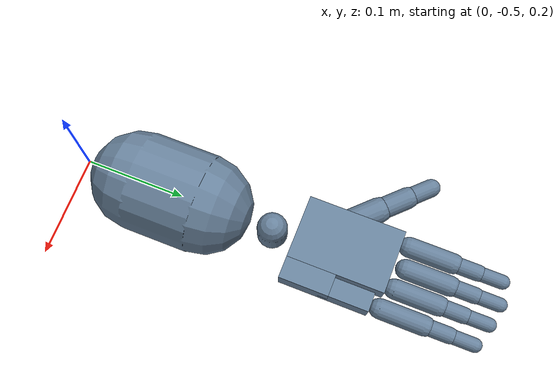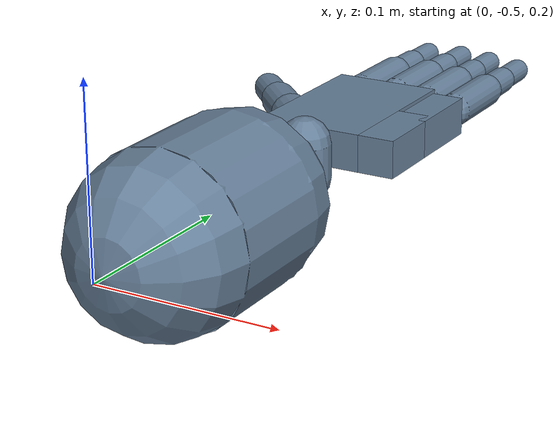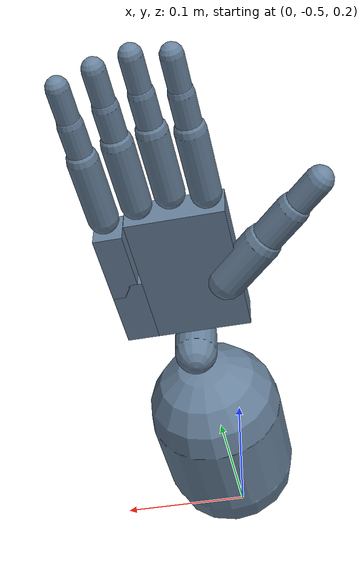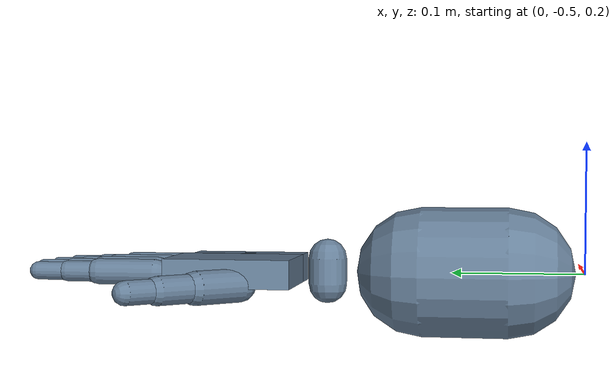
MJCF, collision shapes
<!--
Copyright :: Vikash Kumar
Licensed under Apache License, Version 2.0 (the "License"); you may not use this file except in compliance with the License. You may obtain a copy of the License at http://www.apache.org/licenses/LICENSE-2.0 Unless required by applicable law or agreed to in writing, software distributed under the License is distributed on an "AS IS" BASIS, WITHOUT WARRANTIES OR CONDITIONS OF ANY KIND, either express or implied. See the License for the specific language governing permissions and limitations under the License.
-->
<!-- ======================================================
    Extracted and Modified by Sudeep Dasari
====================================================== -->

<mujoco model='adroit'>
    <include file='../../common.xml'/>

    <asset>
        <material name="MatColl" specular="1" shininess="0.3" reflectance="0.5" rgba="0.4 0.5 0.6 1" />
        <material name="MatViz" specular="0.75" shininess="0.1" reflectance="0.5" rgba="0.9 0.7 0.5 1" />

        <mesh name="forearm_simple" file="../../meshes/adroit/forearm_simple.stl" />
        <mesh name="wrist" file="../../meshes/adroit/wrist.stl" scale="0.001 0.001 0.001"/>
        <mesh name="palm" file="../../meshes/adroit/palm.stl" scale="0.001 0.001 0.001"/>
        <mesh name="lfmetacarpal" file="../../meshes/adroit/lfmetacarpal.stl" scale="0.001 0.001 0.001"/>
        <mesh name="knuckle" file="../../meshes/adroit/knuckle.stl" scale="0.001 0.001 0.001"/>
        <mesh name="F3" file="../../meshes/adroit/F3.stl" scale="0.001 0.001 0.001"/>
        <mesh name="F2" file="../../meshes/adroit/F2.stl" scale="0.001 0.001 0.001"/>
        <mesh name="F1" file="../../meshes/adroit/F1.stl" scale="0.001 0.001 0.001"/>
        <mesh name="TH3_z" file="../../meshes/adroit/TH3_z.stl" scale="0.001 0.001 0.001"/>
        <mesh name="TH2_z" file="../../meshes/adroit/TH2_z.stl" scale="0.001 0.001 0.001"/>
        <mesh name="TH1_z" file="../../meshes/adroit/TH1_z.stl" scale="0.001 0.001 0.001"/>
    </asset>

    <worldbody>
        <!-- ======= HAND ======= -->
        <body name="forearm" pos="0 -0.7 0.2" euler="-1.57 0 3.14">
            <inertial pos="0.001 -0.002 0.29" quat="0.982037 -0.0160006 0 -0.188007" mass="4" diaginertia="0.01 0.01 0.0075" />
            <joint name="ARTx" pos="0 0 0" axis="1 0 0" type="slide" range="-0.25 0.25" damping="20" />
	    <joint name="ARTy" pos="0 0 0" axis="0 1 0" type="slide" range="-0.2 0.2" damping="20" />
            <joint name="ARTz" pos="0 0 0" axis="0 0 1" type="slide" range="-0.3 0.5" damping="20" />
            <joint name="ARRx" pos="0 0 0" axis="1 0 0" range="-1.75 1.75" damping="20" />
            <joint name="ARRy" pos="0 0 0" axis="0 1 0" range="-1.75 1.75" damping="20" />
            <joint name="ARRz" pos="0 0 0" axis="0 0 1" range="-2.5 2.5" damping="20" />
            <geom name="V_forearm" class="D_Vizual" pos="0 -.01 .181" euler="0 0 -1.57"  mesh="forearm_simple" />
            <geom name="C_forearm1" class="DC_Hand" size="0.05 0.033" pos="0 0 0.29" type="capsule" rgba="0.4 0.5 0.6 0.1" />
            <!-- ======= Adroit ======= -->
            <body name="wrist" pos="0 0 0.396">
                <inertial pos="0.003 0 0.016" quat="0.504234 0.49623 0.49523 0.504234" mass="0.3" diaginertia="0.001 0.001 0.001" />
                <camera name="wrist_cam" pos="0.0 -0.03 0.05" quat="0.0 0.0 -0.9659258262890683 -0.25881904510252074" fovy="70"/>
                <site name="Tch_wrist" class="D_Touch" pos="0 0 0" />

                <joint name="WRJ1" pos="0 0 0" axis="0 1 0" range="-0.524 0.175" armature="0.005" damping="0.5" />
                <geom name="V_wrist" class="D_Vizual" mesh="wrist" />
                <geom name="C_wrist" class="DC_Hand" size="0.015 0.01" quat="0.707107 0.707107 0 0" type="capsule" rgba="0.4 0.5 0.6 0.1" />
                <body name="palm" pos="0 0 0.034">
                    <inertial pos="0.006 0 0.036" quat="0.715833 0.0439898 0.0749825 0.692839" mass="0.3" diaginertia="0.001 0.001 0.001" />
                    <body name="wrist_point"> <geom name="wrist_point" contype="0" conaffinity="0" rgba="1 0 0 0" size=".018" type="sphere"/></body>
                    <joint name="WRJ0" pos="0 0 0" axis="1 0 0" range="-0.785 0.611" armature="0.005" damping="0.5" />
                    <geom name="V_palm" class="D_Vizual" mesh="palm" />
                    <geom name="C_palm0" class="DC_Hand" size="0.032 0.0111 0.049" pos="0.011 0 0.038" type="box" rgba="0.4 0.5 0.6 0.1" />
                    <geom name="C_palm1" class="DC_Hand" size="0.011 0.0111 0.025" pos="-0.032 0 0.014" type="box" rgba="0.4 0.5 0.6 0.1" />
                    <site name="S_grasp"  type="sphere" rgba="0 0 0 0" size="0.01" pos=".007 -.05 0.07" quat="0.0087 -0.6 -0.0034 -0.81  " />
                    <site class="D_Touch" name="Tch_ffmetacarpal" size="0.009 0.004 0.006" pos="0.033 -.008 .078"/>
                    <site class="D_Touch" name="Tch_mfmetacarpal" size="0.009 0.004 0.014" pos="0.011 -.008 .074"/>
                    <site class="D_Touch" name="Tch_rfmetacarpal" size="0.009 0.004 0.016" pos="-0.011 -.008 .068"/>
                    <site class="D_Touch" name="Tch_thmetacarpal" size="0.008 0.004 0.015" pos="0.006 -.008 .042" euler="0 0.57 0"/>
                    <site class="D_Touch" name="Tch_palm" size="0.012 0.004 0.016" pos="-0.017 -.008 .024" euler="0 -1 0"/>

                    <body name="ffknuckle" pos="0.033 0 0.095">
                        <inertial pos="0 0 0" quat="0.520062 0.854102 0.00600072 -0.00300036" mass="0.008" diaginertia="1e-05 1e-05 1e-05" />
                        <body name="ffknuckle_point" pos="0 0 0.00"> <geom name="ffknuckle_point" contype="0" conaffinity="0" rgba="1 0 0 0" size=".013" type="sphere"/></body>
                        <joint name="FFJ3" pos="0 0 0" axis="0 1 0" range="-0.436 0.436" />
                        <geom name="V_ffknuckle" class="D_Vizual" mesh="knuckle" />
                        <body name="ffproximal" pos="0 0 0">
                            <inertial pos="0 0 0.023" quat="0.707095 -0.00400054 0.00400054 0.707095" mass="0.014" diaginertia="1e-05 1e-05 1e-05" />
                            <joint name="FFJ2" pos="0 0 0" axis="1 0 0" range="0 1.571" />
                            <geom name="V_ffproximal" class="D_Vizual" mesh="F3" />
                            <geom name="C_ffproximal" class="DC_Hand" size="0.01 0.0225" pos="0 0 0.0225" type="capsule" />
                            <site class="D_Touch" name="Tch_ffproximal" size="0.009 0.004 0.012" pos="0 -.007 .022"/>
                            <body name="ffmiddle" pos="0 0 0.045">
                                <inertial pos="0 0 0.011" quat="0.707107 0 0 0.707107" mass="0.012" diaginertia="1e-05 1e-05 1e-05" />
                                <body name="ffmiddle_point" pos="0 0 0.00"> <geom name="ffmiddle_point" contype="0" conaffinity="0" rgba="0 1 0 0" size=".01" type="sphere"/></body>
                                <joint name="FFJ1" pos="0 0 0" axis="1 0 0" range="0 1.571" />
                                <geom name="V_ffmiddle" class="D_Vizual" mesh="F2" />
                                <geom name="C_ffmiddle" class="DC_Hand" size="0.00805 0.0125" pos="0 0 0.0125" type="capsule" />
                                <site class="D_Touch" name="Tch_ffmiddle" size="0.009 0.002 0.007" pos="0 -.007 .013"/>
                                <body name="ffdistal" pos="0 0 0.025">
                                    <inertial pos="0 0 0.015" quat="0.7071 -0.00300043 0.00300043 0.7071" mass="0.01" diaginertia="1e-05 1e-05 1e-05" />
                                    <body name="ffdistal_point" pos="0 0.0 0.024"> <geom name="ffdistal_point" contype="0" conaffinity="0" rgba="0 0 1 0" size=".01" type="sphere"/></body>
                                    <joint name="FFJ0" pos="0 0 0" axis="1 0 0" range="0 1.571" />
                                    <geom name="V_ffdistal" class="D_Vizual" pos="0 0 0.001" mesh="F1" />
                                    <geom name="C_ffdistal" class="DC_Hand" size="0.00705 0.012" pos="0 0 0.012" type="capsule" condim="4" />
                                    <site name="S_fftip" pos="0 0 0.026" group="3" />
                                    <site name="Tch_fftip" class="D_Touch" pos="0 -0.004 0.018" />
                                </body>
                            </body>
                        </body>
                    </body>
                    <body name="mfknuckle" pos="0.011 0 0.099">
                        <inertial pos="0 0 0" quat="0.520062 0.854102 0.00600072 -0.00300036" mass="0.008" diaginertia="1e-05 1e-05 1e-05" />
                        <body name="mfknuckle_point" pos="0 0 0.00"> <geom name="mfknuckle_point" contype="0" conaffinity="0" rgba="1 0 0 0" size=".013" type="sphere"/></body>
                        <joint name="MFJ3" pos="0 0 0" axis="0 1 0" range="-0.436 0.436" />
                        <geom name="V_mfknuckle" class="D_Vizual" mesh="knuckle" />
                        <body name="mfproximal" pos="0 0 0">
                            <inertial pos="0 0 0.023" quat="0.707095 -0.00400054 0.00400054 0.707095" mass="0.014" diaginertia="1e-05 1e-05 1e-05" />
                            <joint name="MFJ2" pos="0 0 0" axis="1 0 0" range="0 1.571" />
                            <geom name="V_mfproximal" class="D_Vizual" mesh="F3" />
                            <geom name="C_mfproximal" class="DC_Hand" size="0.01 0.0225" pos="0 0 0.0225" type="capsule" />
                            <site class="D_Touch" name="Tch_mfproximal" size="0.009 0.004 0.012" pos="0 -.007 .022"/><body name="mfmiddle" pos="0 0 0.045">
                                <inertial pos="0 0 0.012" quat="0.707107 0 0 0.707107" mass="0.012" diaginertia="1e-05 1e-05 1e-05" />
                                <body name="mfmiddle_point" pos="0 0 0.00"> <geom name="mfmiddle_point" contype="0" conaffinity="0" rgba="0 1 0 0" size=".01" type="sphere"/></body>
                                <joint name="MFJ1" pos="0 0 0" axis="1 0 0" range="0 1.571" />
                                <geom name="V_mfmiddle" class="D_Vizual" mesh="F2" />
                                <geom name="C_mfmiddle" class="DC_Hand" size="0.00805 0.0125" pos="0 0 0.0125" type="capsule" />
                                <site class="D_Touch" name="Tch_mfmiddle" size="0.009 0.002 0.007" pos="0 -.007 .013"/>
                                <body name="mfdistal" pos="0 0 0.025">
                                    <inertial pos="0 0 0.015" quat="0.7071 -0.00300043 0.00300043 0.7071" mass="0.01" diaginertia="1e-05 1e-05 1e-05" />
                                    <body name="mfdistal_point" pos="0 0 0.024"> <geom name="mfdistal_point" contype="0" conaffinity="0" rgba="0 0 1 0" size=".01" type="sphere"/></body>
                                    <joint name="MFJ0" pos="0 0 0" axis="1 0 0" range="0 1.571" />
                                    <geom name="V_mfdistal" class="D_Vizual" mesh="F1" />
                                    <geom name="C_mfdistal" class="DC_Hand" size="0.00705 0.012" pos="0 0 0.012" type="capsule" condim="4" />
                                    <site name="S_mftip" pos="0 0 0.026" group="3" />
                                    <site name="Tch_mftip" class="D_Touch" pos="0 -0.004 0.018" />
                                </body>
                            </body>
                        </body>
                    </body>
                    <body name="rfknuckle" pos="-0.011 0 0.095">
                        <inertial pos="0 0 0" quat="0.520062 0.854102 0.00600072 -0.00300036" mass="0.008" diaginertia="1e-05 1e-05 1e-05" />
                        <body name="rfknuckle_point" pos="0 0 0.00"> <geom name="rfknuckle_point" contype="0" conaffinity="0" rgba="1 0 0 0" size=".013" type="sphere"/></body>
                        <joint name="RFJ3" pos="0 0 0" axis="0 1 0" range="-0.436 0.436" />
                        <geom name="V_rfknuckle" class="D_Vizual" mesh="knuckle" />
                        <body name="rfproximal" pos="0 0 0">
                            <inertial pos="0 0 0.023" quat="0.707095 -0.00400054 0.00400054 0.707095" mass="0.014" diaginertia="1e-05 1e-05 1e-05" />
                            <joint name="RFJ2" pos="0 0 0" axis="1 0 0" range="0 1.571"/>
                            <geom name="V_rfproximal" class="D_Vizual" mesh="F3" />
                            <geom name="C_rfproximal" class="DC_Hand" size="0.01 0.0225" pos="0 0 0.0225" type="capsule" />
                            <site class="D_Touch" name="Tch_rfproximal" size="0.009 0.004 0.012" pos="0 -.007 .022"/>
                            <body name="rfmiddle" pos="0 0 0.045">
                                <inertial pos="0 0 0.012" quat="0.707107 0 0 0.707107" mass="0.012" diaginertia="1e-05 1e-05 1e-05" />
                                <body name="rfmiddle_point" pos="0 0 0.00"> <geom name="rfmiddle_point" contype="0" conaffinity="0" rgba="0 1 0 0" size=".01" type="sphere"/></body>
                                <joint name="RFJ1" pos="0 0 0" axis="1 0 0" range="0 1.571" />
                                <geom name="V_rfmiddle" class="D_Vizual" mesh="F2" />
                                <geom name="C_rfmiddle" class="DC_Hand" size="0.00805 0.0125" pos="0 0 0.0125" type="capsule" />
                                <site class="D_Touch" name="Tch_rfmiddle" size="0.009 0.002 0.007" pos="0 -.007 .013"/>
                                <body name="rfdistal" pos="0 0 0.025">
                                    <inertial pos="0 0 0.015" quat="0.7071 -0.00300043 0.00300043 0.7071" mass="0.01" diaginertia="1e-05 1e-05 1e-05" />
                                    <body name="rfdistal_point" pos="0 0 0.024"> <geom name="rfdistal_point" contype="0" conaffinity="0" rgba="0 0 1 0" size=".01" type="sphere"/></body>
                                    <joint name="RFJ0" pos="0 0 0" axis="1 0 0" range="0 1.571" />
                                    <geom name="V_rfdistal" class="D_Vizual" pos="0 0 0.001" mesh="F1" />
                                    <geom name="C_rfdistal" class="DC_Hand" size="0.00705 0.012" pos="0 0 0.012" type="capsule" condim="4" />
                                    <site name="S_rftip" pos="0 0 0.026" group="3" />
                                    <site name="Tch_rftip" class="D_Touch" pos="0 -0.004 0.018" />
                                </body>
                            </body>
                        </body>
                    </body>
                    <body name="lfmetacarpal" pos="-0.017 0 0.044">
                        <inertial pos="-0.014 0.001 0.014" quat="0.709167 -0.0920216 -0.0630148 0.696164" mass="0.075" diaginertia="1e-05 1e-05 1e-05" />
                        <joint name="LFJ4" pos="0 0 0" axis="0.570977 0 0.820966" range="0 0.698" />
                        <geom name="V_lfmetacarpal" class="D_Vizual" pos="-0.016 0 -0.023" mesh="lfmetacarpal" />
                        <geom name="C_lfmetacarpal" class="DC_Hand" size="0.0095 0.0111 0.025" pos="-0.0165 0 0.01" type="box" rgba="0.4 0.5 0.6 0.2" />
                        <site class="D_Touch" name="Tch_lfmetacarpal" size="0.009 0.004 0.014" pos="-0.016 -.008 .017"/>
                        <body name="lfknuckle" pos="-0.017 0 0.044">
                            <inertial pos="0 0 0" quat="0.520062 0.854102 0.00600072 -0.00300036" mass="0.008" diaginertia="1e-05 1e-05 1e-05" />
                            <body name="lfknuckle_point" pos="0 0 0.00"> <geom name="lfknuckle_point" contype="0" conaffinity="0" rgba="0 1 0 0" size=".013" type="sphere"/></body>
                            <joint name="LFJ3" pos="0 0 0" axis="0 1 0" range="-0.436 0.436" />
                            <geom name="V_lfknuckle" class="D_Vizual" mesh="knuckle" />
                            <body name="lfproximal" pos="0 0 0">
                                <inertial pos="0 0 0.023" quat="0.707095 -0.00400054 0.00400054 0.707095" mass="0.014" diaginertia="1e-05 1e-05 1e-05" />
                                <joint name="LFJ2" pos="0 0 0" axis="1 0 0" range="0 1.571" />
                                <geom name="V_lfproximal" class="D_Vizual" mesh="F3" />
                                <geom name="C_lfproximal" class="DC_Hand" size="0.01 0.0225" pos="0 0 0.0225" type="capsule" />
                                <site class="D_Touch" name="Tch_lfproximal" size="0.009 0.004 0.012" pos="0 -.007 .022"/>
                                <body name="lfmiddle" pos="0 0 0.045">
                                    <inertial pos="0 0 0.012" quat="0.707107 0 0 0.707107" mass="0.012" diaginertia="1e-05 1e-05 1e-05" />
                                    <body name="lfmiddle_point" pos="0 0 0.00"> <geom name="lfmiddle_point" contype="0" conaffinity="0" rgba="1 0 0 0" size=".01" type="sphere"/></body>
                                    <joint name="LFJ1" pos="0 0 0" axis="1 0 0" range="0 1.571" />
                                    <geom name="V_lfmiddle" class="D_Vizual" mesh="F2" />
                                    <geom name="C_lfmiddle" class="DC_Hand" size="0.00805 0.0125" pos="0 0 0.0125" type="capsule" />
                                    <site class="D_Touch" name="Tch_lfmiddle" size="0.009 0.002 0.007" pos="0 -.007 .013"/>
                                    <body name="lfdistal" pos="0 0 0.025">
                                        <inertial pos="0 0 0.015" quat="0.7071 -0.00300043 0.00300043 0.7071" mass="0.01" diaginertia="1e-05 1e-05 1e-05" />
                                        <body name="lfdistal_point" pos="0 0 0.024"> <geom name="lfdistal_point" contype="0" conaffinity="0" rgba="0 0 1 0" size=".01" type="sphere"/></body>
                                        <joint name="LFJ0" pos="0 0 0" axis="1 0 0" range="0 1.571" />
                                        <geom name="V_lfdistal" class="D_Vizual" pos="0 0 0.001" mesh="F1" />
                                        <geom name="C_lfdistal" class="DC_Hand" size="0.00705 0.012" pos="0 0 0.012" type="capsule" condim="4" />
                                        <site name="S_lftip" pos="0 0 0.026" group="3" />
                                        <site name="Tch_lftip" class="D_Touch" pos="0 -0.004 0.018" />
                                    </body>
                                </body>
                            </body>
                        </body>
                    </body>
                    <body name="thbase" pos="0.034 -0.009 0.029" quat="0.923956 0 0.382499 0">
                        <inertial pos="0 0 0" mass="0.01" diaginertia="1e-05 1e-05 1e-05" />
                        <body name="thknuckle_point" pos="0 0 0.00"> <geom name="thknuckle_point" contype="0" conaffinity="0" rgba="1 0 0 0" size=".017" type="sphere"/></body>
                        <joint name="THJ4" pos="0 0 0" axis="0 0 -1" range="-1.047 1.047" />
                        <geom name="V_thbase" size="0.001 0.001 0.001" type="box" group="1" />
                        <body name="thproximal" pos="0 0 0">
                            <inertial pos="0 0 0.017" quat="0.981604 0 0.000999597 0.190923" mass="0.016" diaginertia="1e-05 1e-05 1e-05" />
                            <joint name="THJ3" pos="0 0 0" axis="1 0 0" range="0 1.309" />
                            <geom name="V_thproximal" class="D_Vizual" mesh="TH3_z" />
                            <geom name="C_thproximal" class="DC_Hand" size="0.013 0.019" pos="0 0 0.019" type="capsule" rgba="0.4 0.5 0.6 0.1" />
                            <site class="D_Touch" name="Tch_thproximal" size="0.005 0.011 0.011" pos="-.008 0 0.022"/>
                            <body name="thhub" pos="0 0 0.038">
                                <inertial pos="0 0 0" mass="0.002" diaginertia="1e-05 1e-05 1e-05" />
                                <joint name="THJ2" pos="0 0 0" axis="1 0 0" range="-0.262 0.262" />
                                <geom name="V_thhub" size="0.001 0.001 0.001" type="box" group="1" />
                                <body name="thmiddle" pos="0 0 0">
                                    <inertial pos="0 0 0.016" quat="0.999971 -0.000999971 -0.00699979 0.00299991" mass="0.016" diaginertia="1e-05 1e-05 1e-05" />
                                    <body name="thmiddle_point" pos="0 0 0.00"> <geom name="thmiddle_point" contype="0" conaffinity="0" rgba="0 1 0 0" size=".012" type="sphere"/></body>
                                    <joint name="THJ1" pos="0 0 0" axis="0 1 0" range="-0.524 0.524" />
                                    <geom name="V_thmiddle" class="D_Vizual" mesh="TH2_z" />
                                    <geom name="C_thmiddle" class="DC_Hand" size="0.011 0.016" pos="0 0 0.016" type="capsule" />
                                    <site class="D_Touch" name="Tch_thmiddle" size="0.005 0.011 0.011" pos="-.008 0 0.018" />
                                    <body name="thdistal" pos="0 0 0.032">
                                        <inertial pos="0 0 0.016" quat="0.99887 -0.00499935 -0.0469939 0.00499935" mass="0.016" diaginertia="1e-05 1e-05 1e-05" />
                                        <body name="thdistal_point" pos="0 0 0.024"> <geom name="thdistal_point" contype="0" conaffinity="0" rgba="0 0 1 0" size=".0115" type="sphere"/></body>
                                        <joint name="THJ0" pos="0 0 0" axis="0 1 0" range="-1.571 0" />
                                        <geom name="V_thdistal" class="D_Vizual" mesh="TH1_z" />
                                        <geom name="C_thdistal" class="DC_Hand" size="0.00918 0.013" pos="0 0 0.013" type="capsule" condim="4" />
                                        <site name="S_thtip" pos="0 0 0.0275" group="3" />
                                        <site name="Tch_thtip" class="D_Touch" pos="-0.005 0 0.02" size="0.005 0.011 0.016" />
                                    </body>
                                </body>
                            </body>
                        </body>
                    </body>
                </body>
            </body>
        </body>
    </worldbody>

    <default>
        <default class="D_Touch">
            <site size="0.009 0.004 0.013" group="4" type="box" rgba="0.8 0.8 0.8 0.15" />
        </default>
        <default class="DC_Hand">
            <geom conaffinity="0" group="4" material="MatColl" />
        </default>
        <default class="D_Vizual">
            <geom type="mesh" contype="0" conaffinity="0" group="1" material="MatViz" />
        </default>
        <default class="free">
            <joint type="free" limited="false" armature="0" damping="0" />
        </default>
    </default>

    <contact>
        <pair geom1="C_palm0" geom2="C_thdistal" condim="1" />
        <pair geom1="C_ffproximal" geom2="C_mfproximal" condim="1" />
        <pair geom1="C_ffproximal" geom2="C_thdistal" condim="1" />
        <pair geom1="C_ffmiddle" geom2="C_thdistal" condim="1" />
        <pair geom1="C_ffdistal" geom2="C_mfdistal" condim="1" />
        <pair geom1="C_ffdistal" geom2="C_thdistal" condim="1" />
        <pair geom1="C_mfproximal" geom2="C_rfproximal" condim="1" />
        <pair geom1="C_mfproximal" geom2="C_thdistal" condim="1" />
        <pair geom1="C_mfdistal" geom2="C_rfdistal" condim="1" />
        <pair geom1="C_mfdistal" geom2="C_lfdistal" condim="1" />
        <pair geom1="C_mfdistal" geom2="C_thdistal" condim="1" />
        <pair geom1="C_rfproximal" geom2="C_lfproximal" condim="1" />
        <pair geom1="C_rfmiddle" geom2="C_lfmiddle" condim="1" />
        <pair geom1="C_rfmiddle" geom2="C_lfdistal" condim="1" />
        <pair geom1="C_rfdistal" geom2="C_lfmiddle" condim="1" />
        <pair geom1="C_rfdistal" geom2="C_lfdistal" condim="1" />
        <pair geom1="C_rfdistal" geom2="C_lfdistal" condim="1" />
        <pair geom1="C_rfdistal" geom2="C_thdistal" condim="1" />
        <pair geom1="C_lfdistal" geom2="C_thdistal" condim="1" />
    </contact>

    <tendon>
        <fixed name="T_WRJ1r" range="-0.032 0.032">
            <joint joint="WRJ1" coef="0.018" />
        </fixed>
        <fixed name="T_WRJ1l" range="-0.032 0.032">
            <joint joint="WRJ1" coef="-0.018" />
        </fixed>
        <fixed name="T_WRJ0u" range="-0.032 0.032">
            <joint joint="WRJ0" coef="0.018" />
        </fixed>
        <fixed name="T_WRJ0d" range="-0.032 0.032">
            <joint joint="WRJ0" coef="-0.018" />
        </fixed>
        <fixed name="T_FFJ3r" range="-0.018 0.018">
            <joint joint="FFJ3" coef="0.01" />
        </fixed>
        <fixed name="T_FFJ3l" range="-0.018 0.018">
            <joint joint="FFJ3" coef="-0.01" />
        </fixed>
        <fixed name="T_FFJ2u" range="-0.007 0.03">
            <joint joint="FFJ2" coef="0.01" />
        </fixed>
        <fixed name="T_FFJ2d" range="-0.03 0.007">
            <joint joint="FFJ2" coef="-0.01" />
        </fixed>
        <fixed name="T_FFJ1c" range="-0.001 0.001">
            <joint joint="FFJ0" coef="0.00705" />
            <joint joint="FFJ1" coef="-0.00805" />
        </fixed>
        <fixed name="T_FFJ1u" range="-0.007 0.03">
            <joint joint="FFJ0" coef="0.00705" />
            <joint joint="FFJ1" coef="0.00805" />
        </fixed>
        <fixed name="T_FFJ1d" range="-0.03 0.007">
            <joint joint="FFJ0" coef="-0.00705" />
            <joint joint="FFJ1" coef="-0.00805" />
        </fixed>
        <fixed name="T_MFJ3r" range="-0.018 0.018">
            <joint joint="MFJ3" coef="0.01" />
        </fixed>
        <fixed name="T_MFJ3l" range="-0.018 0.018">
            <joint joint="MFJ3" coef="-0.01" />
        </fixed>
        <fixed name="T_MFJ2u" range="-0.007 0.03">
            <joint joint="MFJ2" coef="0.01" />
        </fixed>
        <fixed name="T_MFJ2d" range="-0.03 0.007">
            <joint joint="MFJ2" coef="-0.01" />
        </fixed>
        <fixed name="T_MFJ1c" range="-0.001 0.001">
            <joint joint="MFJ0" coef="0.00705" />
            <joint joint="MFJ1" coef="-0.00805" />
        </fixed>
        <fixed name="T_MFJ1u" range="-0.007 0.03">
            <joint joint="MFJ0" coef="0.00705" />
            <joint joint="MFJ1" coef="0.00805" />
        </fixed>
        <fixed name="T_MFJ1d" range="-0.03 0.007">
            <joint joint="MFJ0" coef="-0.00705" />
            <joint joint="MFJ1" coef="-0.00805" />
        </fixed>
        <fixed name="T_RFJ3r" range="-0.018 0.018">
            <joint joint="RFJ3" coef="0.01" />
        </fixed>
        <fixed name="T_RFJ3l" range="-0.018 0.018">
            <joint joint="RFJ3" coef="-0.01" />
        </fixed>
        <fixed name="T_RFJ2u" range="-0.007 0.03">
            <joint joint="RFJ2" coef="0.01" />
        </fixed>
        <fixed name="T_RFJ2d" range="-0.03 0.007">
            <joint joint="RFJ2" coef="-0.01" />
        </fixed>
        <fixed name="T_RFJ1c" range="-0.001 0.001">
            <joint joint="RFJ0" coef="0.00705" />
            <joint joint="RFJ1" coef="-0.00805" />
        </fixed>
        <fixed name="T_RFJ1u" range="-0.007 0.03">
            <joint joint="RFJ0" coef="0.00705" />
            <joint joint="RFJ1" coef="0.00805" />
        </fixed>
        <fixed name="T_RFJ1d" range="-0.03 0.007">
            <joint joint="RFJ0" coef="-0.00705" />
            <joint joint="RFJ1" coef="-0.00805" />
        </fixed>
        <fixed name="T_LFJ4u" range="-0.007 0.03">
            <joint joint="LFJ4" coef="0.01" />
        </fixed>
        <fixed name="T_LFJ4d" range="-0.03 0.007">
            <joint joint="LFJ4" coef="-0.01" />
        </fixed>
        <fixed name="T_LFJ3r" range="-0.018 0.018">
            <joint joint="LFJ3" coef="0.01" />
        </fixed>
        <fixed name="T_LFJ3l" range="-0.018 0.018">
            <joint joint="LFJ3" coef="-0.01" />
        </fixed>
        <fixed name="T_LFJ2u" range="-0.007 0.03">
            <joint joint="LFJ2" coef="0.01" />
        </fixed>
        <fixed name="T_LFJ2d" range="-0.03 0.007">
            <joint joint="LFJ2" coef="-0.01" />
        </fixed>
        <fixed name="T_LFJ1c" range="-0.001 0.001">
            <joint joint="LFJ0" coef="0.00705" />
            <joint joint="LFJ1" coef="-0.00805" />
        </fixed>
        <fixed name="T_LFJ1u" range="-0.007 0.03">
            <joint joint="LFJ0" coef="0.00705" />
            <joint joint="LFJ1" coef="0.00805" />
        </fixed>
        <fixed name="T_LFJ1d" range="-0.03 0.007">
            <joint joint="LFJ0" coef="-0.00705" />
            <joint joint="LFJ1" coef="-0.00805" />
        </fixed>
        <fixed name="T_THJ4a" range="-0.018 0.018">
            <joint joint="THJ4" coef="0.01636" />
        </fixed>
        <fixed name="T_THJ4c" range="-0.018 0.018">
            <joint joint="THJ4" coef="-0.01636" />
        </fixed>
        <fixed name="T_THJ3u" range="-0.007 0.03">
            <joint joint="THJ3" coef="0.01" />
        </fixed>
        <fixed name="T_THJ3d" range="-0.03 0.007">
            <joint joint="THJ3" coef="-0.01" />
        </fixed>
        <fixed name="T_THJ2u" range="-0.018 0.018">
            <joint joint="THJ2" coef="0.011" />
        </fixed>
        <fixed name="T_THJ2d" range="-0.018 0.018">
            <joint joint="THJ2" coef="-0.011" />
        </fixed>
        <fixed name="T_THJ1r" range="-0.018 0.018">
            <joint joint="THJ1" coef="0.011" />
        </fixed>
        <fixed name="T_THJ1l" range="-0.018 0.018">
            <joint joint="THJ1" coef="-0.011" />
        </fixed>
        <fixed name="T_THJ0r" range="-0.03 0.007">
            <joint joint="THJ0" coef="0.009" />
        </fixed>
        <fixed name="T_THJ0l" range="-0.007 0.03">
            <joint joint="THJ0" coef="-0.009" />
        </fixed>
    </tendon>

</mujoco>

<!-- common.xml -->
<mujoco>
    <compiler angle="radian" />

    <asset>
        <material name="MatObject" specular="0.75" shininess="0.1" reflectance="0.5" rgba="1.0 1.0 1.0 1" />
    </asset>

    <default>
        <joint limited="true" margin="0.01" armature="0.001" damping="0.05" frictionloss="0.001" />
        <geom friction="1 0.5 0.01" margin="0.0005" density="1250" />
        <site size="0.005 0 0" rgba="0.4 0.9 0.4 1" />
        <general ctrllimited="true" ctrlrange="-1 1" />
        <tendon limited="true" />

	<default class="object_visual">
	    <geom type="mesh" contype="0" conaffinity="0" mass="0" group="1" material="MatObject" />
	</default>

	<default class="object_contact">
	    <geom type="mesh" density="1250" condim="4" rgba="0 0 1 0" margin="0.003" solref="-6000 -300" />
	</default>

        <default class="freejoint">
            <joint limited="false" damping="0.0" />
        </default>
    </default>

    <visual>
        <!-- free camera attributes -->
        <global fovy="25" />
    </visual>
</mujoco>
